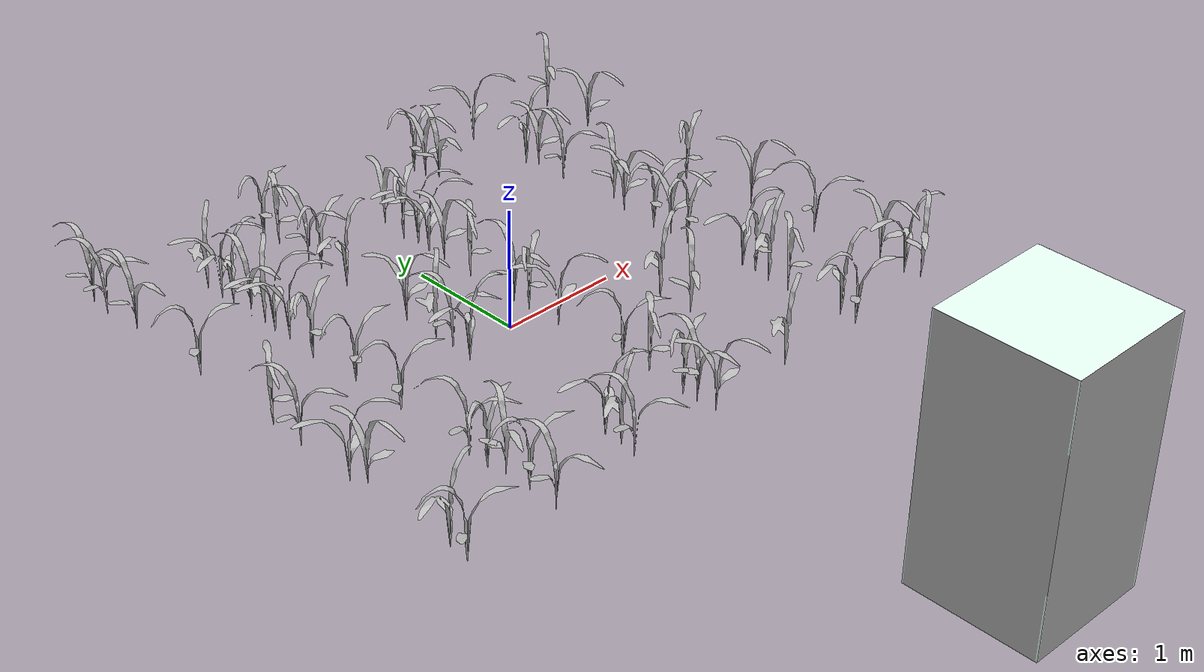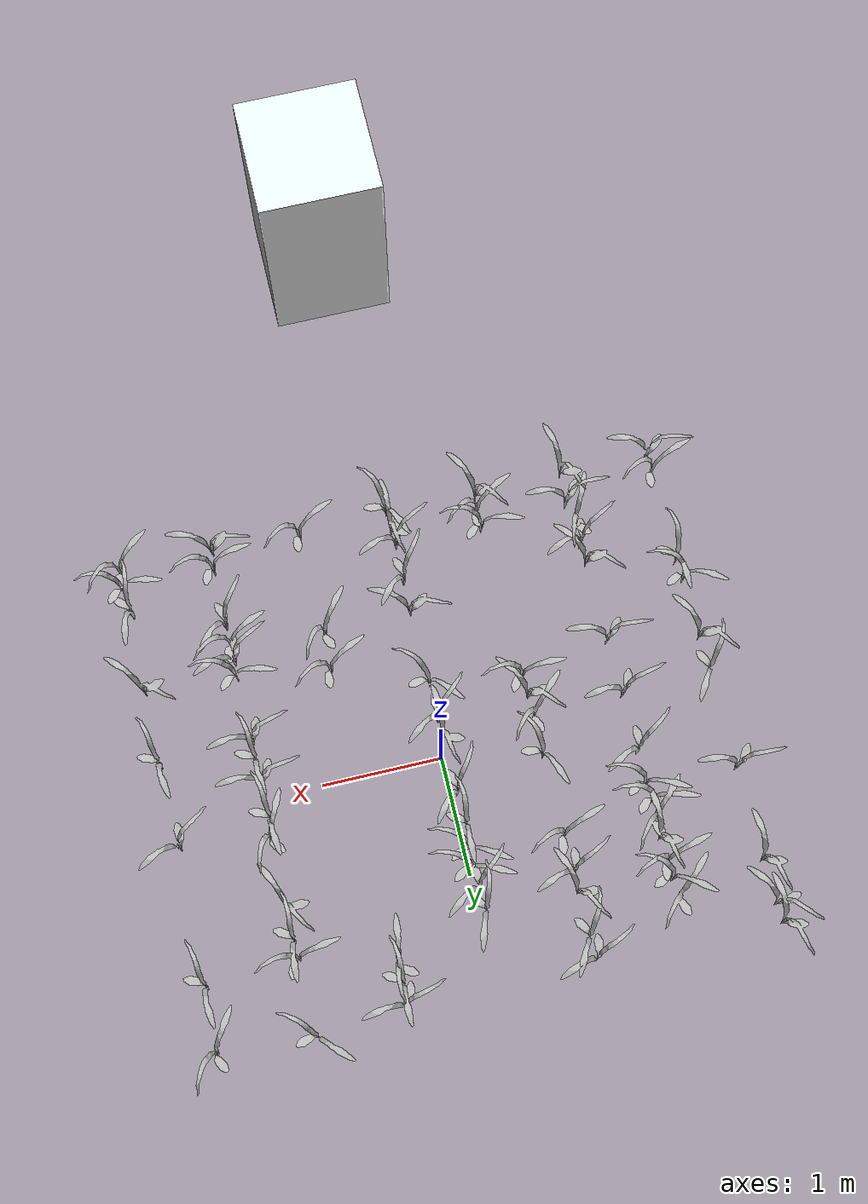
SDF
<sdf version="1.9">
 <world name="virtual_maize_field">
  <physics name="10ms" type="ignored">
   <max_step_size>0.01</max_step_size>
   <real_time_factor>1.0</real_time_factor>
  </physics>
  <plugin filename="gz-sim-physics-system" name="gz::sim::systems::Physics"/>
  <plugin filename="gz-sim-user-commands-system" name="gz::sim::systems::UserCommands"/>
  <plugin filename="gz-sim-scene-broadcaster-system" name="gz::sim::systems::SceneBroadcaster"/>
  <plugin filename="gz-sim-sensors-system" name="gz::sim::systems::Sensors">
   <render_engine>ogre2</render_engine>
  </plugin>
  <plugin filename="gz-sim-imu-system" name="gz::sim::systems::Imu"/>
  <plugin filename="gz-sim-navsat-system" name="gz::sim::systems::NavSat"/>
  <spherical_coordinates>
   <surface_model>EARTH_WGS84</surface_model>
   <world_frame_orientation>ENU</world_frame_orientation>
   <latitude_deg>43.9</latitude_deg>
   <longitude_deg>3.2</longitude_deg>
   <elevation>0</elevation>
   <heading_deg>0</heading_deg>
  </spherical_coordinates>
  <light type="directional" name="sun">
   <pose>0 0 10 0 0 0</pose>
   <diffuse>0.8 0.8 0.8 1</diffuse>
   <specular>0.2 0.2 0.2 1</specular>
   <attenuation>
    <range>1000</range>
    <constant>0.9</constant>
    <linear>0.01</linear>
    <quadratic>0.001</quadratic>
   </attenuation>
   <direction>-0.5 0.1 -0.9</direction>
  </light>
  <scene><sky><clouds><speed>12</speed></clouds></sky><grid>false</grid></scene>
  <include>
   <uri>model://maize_02</uri>
   <pose>-2.280478764553107 -2.057721277300408 0.28627740872267265 0.0 0.0 1.8720120180171442</pose>
   <name>maize_02_0000</name>
   <static>false</static>
  </include>
  <include>
   <uri>model://maize_02</uri>
   <pose>-2.2733260338410277 -1.889202804057839 0.29349625050985456 0.0 0.0 5.63959209871181</pose>
   <name>maize_02_0001</name>
   <static>false</static>
  </include>
  <include>
   <uri>model://maize_02</uri>
   <pose>-2.2619232396700895 -1.0853739835721579 0.30226142411907087 0.0 0.0 3.7515833003964496</pose>
   <name>maize_02_0003</name>
   <static>false</static>
  </include>
  <include>
   <uri>model://maize_02</uri>
   <pose>-2.2867931846025513 -0.9285945823231978 0.2910943614136894 0.0 0.0 4.743273617379528</pose>
   <name>maize_02_0004</name>
   <static>false</static>
  </include>
  <include>
   <uri>model://maize_02</uri>
   <pose>-2.2793649961458917 -0.41335339665062437 0.29112966319470995 0.0 0.0 1.1494339442985053</pose>
   <name>maize_02_0007</name>
   <static>false</static>
  </include>
  <include>
   <uri>model://maize_02</uri>
   <pose>-2.267394452640868 -0.10118366165418897 0.28141365288514425 0.0 0.0 3.1896032610876057</pose>
   <name>maize_02_0009</name>
   <static>false</static>
  </include>
  <include>
   <uri>model://maize_02</uri>
   <pose>-2.2703259378626286 0.7120040851280762 0.29333628642432247 0.0 0.0 2.0322318432456394</pose>
   <name>maize_02_0014</name>
   <static>false</static>
  </include>
  <include>
   <uri>model://maize_02</uri>
   <pose>-2.268814722625795 1.4746359378456526 0.27619452105389064 0.0 0.0 0.7124209023032879</pose>
   <name>maize_02_0019</name>
   <static>false</static>
  </include>
  <include>
   <uri>model://maize_02</uri>
   <pose>-2.2781012746502034 1.8332050532693256 0.27343377258668156 0.0 0.0 1.2546337945646646</pose>
   <name>maize_02_0021</name>
   <static>false</static>
  </include>
  <include>
   <uri>model://maize_02</uri>
   <pose>-2.2841497705269997 1.989020841650235 0.28168002232124884 0.0 0.0 0.7268625106238895</pose>
   <name>maize_02_0022</name>
   <static>false</static>
  </include>
  <include>
   <uri>model://maize_02</uri>
   <pose>-1.5286354149893855 -2.0671385052837166 0.2961514907351318 0.0 0.0 0.8320594968699757</pose>
   <name>maize_02_0023</name>
   <static>false</static>
  </include>
  <include>
   <uri>model://maize_02</uri>
   <pose>-1.5067005864484766 -1.8012772397383014 0.2956138209541594 0.0 0.0 2.0748865432425876</pose>
   <name>maize_02_0025</name>
   <static>false</static>
  </include>
  <include>
   <uri>model://maize_02</uri>
   <pose>-1.5339377065978532 -1.6008881648975608 0.2826941863412517 0.0 0.0 0.18416009197814823</pose>
   <name>maize_02_0026</name>
   <static>false</static>
  </include>
  <include>
   <uri>model://maize_02</uri>
   <pose>-1.5336434804624843 -1.4277718007915514 0.2703062832458717 0.0 0.0 2.573280028896136</pose>
   <name>maize_02_0027</name>
   <static>false</static>
  </include>
  <include>
   <uri>model://maize_02</uri>
   <pose>-1.5397105588408657 -1.2566466978034159 0.27336239124376166 0.0 0.0 1.2869296378073796</pose>
   <name>maize_02_0028</name>
   <static>false</static>
  </include>
  <include>
   <uri>model://maize_02</uri>
   <pose>-1.5350899835801932 -0.5626309827653171 0.2839857180806742 0.0 0.0 1.9847134763411012</pose>
   <name>maize_02_0030</name>
   <static>false</static>
  </include>
  <include>
   <uri>model://maize_02</uri>
   <pose>-1.5382933133703598 -0.08894847618422914 0.2854878301625226 0.0 0.0 2.2920333352055597</pose>
   <name>maize_02_0033</name>
   <static>false</static>
  </include>
  <include>
   <uri>model://maize_02</uri>
   <pose>-1.5328087581296994 0.3957369155054827 0.2560577403246313 0.0 0.0 2.698016188059432</pose>
   <name>maize_02_0036</name>
   <static>false</static>
  </include>
  <include>
   <uri>model://maize_02</uri>
   <pose>-1.5171461868458984 0.6768714418897364 0.2620117879287289 0.0 0.0 4.8270179205906265</pose>
   <name>maize_02_0038</name>
   <static>false</static>
  </include>
  <include>
   <uri>model://maize_02</uri>
   <pose>-1.5417899665669725 0.814537282126748 0.2666770319865936 0.0 0.0 5.007855438043132</pose>
   <name>maize_02_0039</name>
   <static>false</static>
  </include>
  <include>
   <uri>model://maize_02</uri>
   <pose>-1.5110398144468606 0.9718416543588348 0.2507162212025502 0.0 0.0 6.113410660337649</pose>
   <name>maize_02_0040</name>
   <static>false</static>
  </include>
  <include>
   <uri>model://maize_02</uri>
   <pose>-1.5242676854284192 1.1152865554115274 0.25354410919065107 0.0 0.0 0.6832553373274017</pose>
   <name>maize_02_0041</name>
   <static>false</static>
  </include>
  <include>
   <uri>model://maize_02</uri>
   <pose>-1.529188068311415 1.3198203607712269 0.26862109037180276 0.0 0.0 5.57262517404849</pose>
   <name>maize_02_0042</name>
   <static>false</static>
  </include>
  <include>
   <uri>model://maize_02</uri>
   <pose>-1.5291201761355624 1.4604290914006632 0.26536458214025077 0.0 0.0 4.642882497065351</pose>
   <name>maize_02_0043</name>
   <static>false</static>
  </include>
  <include>
   <uri>model://maize_02</uri>
   <pose>-1.5430365260068861 1.612840346753323 0.26536458214025077 0.0 0.0 6.085799571148444</pose>
   <name>maize_02_0044</name>
   <static>false</static>
  </include>
  <include>
   <uri>model://maize_02</uri>
   <pose>-0.7817051901855216 -2.0328149259961523 0.31030970099192084 0.0 0.0 1.1241461711036878</pose>
   <name>maize_02_0047</name>
   <static>false</static>
  </include>
  <include>
   <uri>model://maize_02</uri>
   <pose>-0.7575207239278272 -1.887266459088802 0.30770471518965653 0.0 0.0 5.779769099213055</pose>
   <name>maize_02_0048</name>
   <static>false</static>
  </include>
  <include>
   <uri>model://maize_02</uri>
   <pose>-0.7577755041395364 -1.7390294059736986 0.30770471518965653 0.0 0.0 5.029437009665924</pose>
   <name>maize_02_0049</name>
   <static>false</static>
  </include>
  <include>
   <uri>model://maize_02</uri>
   <pose>-0.7768864872436745 -0.41658178210502944 0.2786956433380686 0.0 0.0 5.283537190459066</pose>
   <name>maize_02_0054</name>
   <static>false</static>
  </include>
  <include>
   <uri>model://maize_02</uri>
   <pose>-0.7854134650305098 -0.2499917242332798 0.2863620462667836 0.0 0.0 1.231788702483761</pose>
   <name>maize_02_0055</name>
   <static>false</static>
  </include>
  <include>
   <uri>model://maize_02</uri>
   <pose>-0.7918883890576693 -0.0741253666109822 0.2860110707337415 0.0 0.0 6.077294900270958</pose>
   <name>maize_02_0056</name>
   <static>false</static>
  </include>
  <include>
   <uri>model://maize_02</uri>
   <pose>-0.7767826078978814 0.26217442401325003 0.2729596430672712 0.0 0.0 4.094909578516444</pose>
   <name>maize_02_0058</name>
   <static>false</static>
  </include>
  <include>
   <uri>model://maize_02</uri>
   <pose>-0.7823073864498058 0.9324001351862787 0.2803677040921131 0.0 0.0 5.6410248753988155</pose>
   <name>maize_02_0062</name>
   <static>false</static>
  </include>
  <include>
   <uri>model://maize_02</uri>
   <pose>-0.7752573416467206 1.2346492001479217 0.2749463412645203 0.0 0.0 2.5422367998107602</pose>
   <name>maize_02_0064</name>
   <static>false</static>
  </include>
  <include>
   <uri>model://maize_02</uri>
   <pose>-0.775198854805925 1.3869016546808568 0.26351107973889415 0.0 0.0 0.9799254664820166</pose>
   <name>maize_02_0065</name>
   <static>false</static>
  </include>
  <include>
   <uri>model://maize_02</uri>
   <pose>-0.7657755336329704 1.7577776070323214 0.248715823978967 0.0 0.0 3.249485313772079</pose>
   <name>maize_02_0067</name>
   <static>false</static>
  </include>
  <include>
   <uri>model://maize_02</uri>
   <pose>-0.7816776214534051 1.9267669328803894 0.24566196096696885 0.0 0.0 2.5245818299771403</pose>
   <name>maize_02_0068</name>
   <static>false</static>
  </include>
  <include>
   <uri>model://maize_02</uri>
   <pose>-0.012623106798989883 -2.0523608632169044 0.3133858134679932 0.0 0.0 4.143608748758966</pose>
   <name>maize_02_0069</name>
   <static>false</static>
  </include>
  <include>
   <uri>model://maize_02</uri>
   <pose>-0.025497776882283232 -1.891169705161148 0.30142042217683973 0.0 0.0 0.639833163429985</pose>
   <name>maize_02_0070</name>
   <static>false</static>
  </include>
  <include>
   <uri>model://maize_02</uri>
   <pose>-0.035903553135029756 -1.7715219985019677 0.2986754284725383 0.0 0.0 2.5567585751894355</pose>
   <name>maize_02_0071</name>
   <static>false</static>
  </include>
  <include>
   <uri>model://maize_02</uri>
   <pose>-0.02372028939165656 -1.43994624638807 0.29746882598129015 0.0 0.0 3.0257246690822797</pose>
   <name>maize_02_0073</name>
   <static>false</static>
  </include>
  <include>
   <uri>model://maize_02</uri>
   <pose>-0.018484125703275914 -1.1735313269096228 0.2773457782854254 0.0 0.0 1.6852105302199818</pose>
   <name>maize_02_0075</name>
   <static>false</static>
  </include>
  <include>
   <uri>model://maize_02</uri>
   <pose>-0.029695686163140958 -0.539713163271828 0.2757065121227481 0.0 0.0 4.447731266840688</pose>
   <name>maize_02_0079</name>
   <static>false</static>
  </include>
  <include>
   <uri>model://maize_02</uri>
   <pose>-0.027342746085042793 -0.23147630886088105 0.27266896482548725 0.0 0.0 2.8277675913144096</pose>
   <name>maize_02_0081</name>
   <static>false</static>
  </include>
  <include>
   <uri>model://maize_02</uri>
   <pose>-0.042180869302177196 -0.087566116344109 0.2709381100503994 0.0 0.0 0.6605415640612664</pose>
   <name>maize_02_0082</name>
   <static>false</static>
  </include>
  <include>
   <uri>model://maize_02</uri>
   <pose>-0.037904733950364825 0.3903296812981221 0.2711201257907982 0.0 0.0 3.0745880617054953</pose>
   <name>maize_02_0085</name>
   <static>false</static>
  </include>
  <include>
   <uri>model://maize_02</uri>
   <pose>-0.04412830767450222 0.6775012571517862 0.27309012982061204 0.0 0.0 3.7012600708133223</pose>
   <name>maize_02_0087</name>
   <static>false</static>
  </include>
  <include>
   <uri>model://maize_02</uri>
   <pose>-0.029748516736134614 0.8705718398112896 0.2703018797877547 0.0 0.0 4.7235088642501095</pose>
   <name>maize_02_0088</name>
   <static>false</static>
  </include>
  <include>
   <uri>model://maize_02</uri>
   <pose>-0.0076149162306997226 1.0186627904998298 0.2652978436262628 0.0 0.0 4.848014839454672</pose>
   <name>maize_02_0089</name>
   <static>false</static>
  </include>
  <include>
   <uri>model://maize_02</uri>
   <pose>-0.016397687150115206 1.1786553341423531 0.26225636241332595 0.0 0.0 2.823594025869263</pose>
   <name>maize_02_0090</name>
   <static>false</static>
  </include>
  <include>
   <uri>model://maize_02</uri>
   <pose>-0.031248315710804955 1.3739684441243332 0.26264293427863594 0.0 0.0 3.4397746441371306</pose>
   <name>maize_02_0091</name>
   <static>false</static>
  </include>
  <include>
   <uri>model://maize_02</uri>
   <pose>0.7330443532824586 -2.0169317931094843 0.3048354902831478 0.0 0.0 5.745012319271584</pose>
   <name>maize_02_0094</name>
   <static>false</static>
  </include>
  <include>
   <uri>model://maize_02</uri>
   <pose>0.7078011130236355 -1.136759334193285 0.2990281774017036 0.0 0.0 6.215871514407281</pose>
   <name>maize_02_0095</name>
   <static>false</static>
  </include>
  <include>
   <uri>model://maize_02</uri>
   <pose>0.7293936028280223 -0.8184948053018155 0.3023409702084387 0.0 0.0 5.747746498627837</pose>
   <name>maize_02_0097</name>
   <static>false</static>
  </include>
  <include>
   <uri>model://maize_02</uri>
   <pose>0.7236318760372444 1.6121855766526554 0.2581625979677966 0.0 0.0 0.4577699006842754</pose>
   <name>maize_02_0103</name>
   <static>false</static>
  </include>
  <include>
   <uri>model://maize_02</uri>
   <pose>0.726154717686349 1.7732769402838457 0.24795208684607412 0.0 0.0 3.7341533889674428</pose>
   <name>maize_02_0104</name>
   <static>false</static>
  </include>
  <include>
   <uri>model://maize_02</uri>
   <pose>0.7429639977898692 1.9310807986946925 0.24403557687155866 0.0 0.0 2.343841111914735</pose>
   <name>maize_02_0105</name>
   <static>false</static>
  </include>
  <include>
   <uri>model://maize_02</uri>
   <pose>1.466310741118168 -2.0447920427068564 0.34074793680812365 0.0 0.0 1.8394985577014276</pose>
   <name>maize_02_0106</name>
   <static>false</static>
  </include>
  <include>
   <uri>model://maize_02</uri>
   <pose>1.4873035778589638 -1.886924852109717 0.32950474805229996 0.0 0.0 5.454947564650885</pose>
   <name>maize_02_0107</name>
   <static>false</static>
  </include>
  <include>
   <uri>model://maize_02</uri>
   <pose>1.4851134008007312 -1.3928115103210834 0.3079879311192529 0.0 0.0 3.0283335735064507</pose>
   <name>maize_02_0110</name>
   <static>false</static>
  </include>
  <include>
   <uri>model://maize_02</uri>
   <pose>1.4718502136994116 -1.2128384641516152 0.31425477425873904 0.0 0.0 5.7267597713433345</pose>
   <name>maize_02_0111</name>
   <static>false</static>
  </include>
  <include>
   <uri>model://maize_02</uri>
   <pose>1.478600219955674 -1.0787080357188175 0.31425477425873904 0.0 0.0 2.5589493242668446</pose>
   <name>maize_02_0112</name>
   <static>false</static>
  </include>
  <include>
   <uri>model://maize_02</uri>
   <pose>1.4852566527859692 -0.944289460517379 0.3088432711248338 0.0 0.0 5.040810731273213</pose>
   <name>maize_02_0113</name>
   <static>false</static>
  </include>
  <include>
   <uri>model://maize_02</uri>
   <pose>1.4740614278502966 -0.3953047534042144 0.28553783273512295 0.0 0.0 2.3384929028737576</pose>
   <name>maize_02_0116</name>
   <static>false</static>
  </include>
  <include>
   <uri>model://maize_02</uri>
   <pose>1.47428114146283 -0.21956637576846333 0.2786039086349345 0.0 0.0 3.83544511150956</pose>
   <name>maize_02_0117</name>
   <static>false</static>
  </include>
  <include>
   <uri>model://maize_02</uri>
   <pose>1.4645172785185367 -0.049408095937768695 0.2781352251771823 0.0 0.0 2.2270544882616865</pose>
   <name>maize_02_0118</name>
   <static>false</static>
  </include>
  <include>
   <uri>model://maize_02</uri>
   <pose>1.4599330411640488 0.26669350990159374 0.2650552820813464 0.0 0.0 3.840100417237829</pose>
   <name>maize_02_0120</name>
   <static>false</static>
  </include>
  <include>
   <uri>model://maize_02</uri>
   <pose>1.4875869712956764 0.4124876196438548 0.2650552820813464 0.0 0.0 0.1569606092228144</pose>
   <name>maize_02_0121</name>
   <static>false</static>
  </include>
  <include>
   <uri>model://maize_02</uri>
   <pose>1.4749053392307594 0.9618474195357856 0.2517673357310972 0.0 0.0 1.04293635995438</pose>
   <name>maize_02_0124</name>
   <static>false</static>
  </include>
  <include>
   <uri>model://maize_02</uri>
   <pose>1.4820486667066433 1.2502157631342794 0.2543755586584445 0.0 0.0 3.677195060604773</pose>
   <name>maize_02_0126</name>
   <static>false</static>
  </include>
  <include>
   <uri>model://maize_02</uri>
   <pose>1.4716951167345085 1.3898954127417584 0.2543755586584445 0.0 0.0 5.454898971379075</pose>
   <name>maize_02_0127</name>
   <static>false</static>
  </include>
  <include>
   <uri>model://maize_02</uri>
   <pose>1.4564951024055428 2.012060380283717 0.2172598174322555 0.0 0.0 4.524284551876832</pose>
   <name>maize_02_0131</name>
   <static>false</static>
  </include>
  <include>
   <uri>model://maize_02</uri>
   <pose>2.233264079078054 -2.020113318545062 0.36588371239326334 0.0 0.0 5.977102094487457</pose>
   <name>maize_02_0132</name>
   <static>false</static>
  </include>
  <include>
   <uri>model://maize_02</uri>
   <pose>2.236514634775952 -1.8678300162539656 0.3554650927638072 0.0 0.0 5.091277182818713</pose>
   <name>maize_02_0133</name>
   <static>false</static>
  </include>
  <include>
   <uri>model://maize_02</uri>
   <pose>2.2124342119860816 -1.657060130539757 0.3449530583598522 0.0 0.0 3.552612742266795</pose>
   <name>maize_02_0134</name>
   <static>false</static>
  </include>
  <include>
   <uri>model://maize_02</uri>
   <pose>2.237383643271413 -0.9998437598259562 0.31468993020800795 0.0 0.0 1.3552988937872712</pose>
   <name>maize_02_0138</name>
   <static>false</static>
  </include>
  <include>
   <uri>model://maize_02</uri>
   <pose>2.2298969815256267 -0.3654442276631373 0.30967009839189763 0.0 0.0 3.8959637144266295</pose>
   <name>maize_02_0141</name>
   <static>false</static>
  </include>
  <include>
   <uri>model://maize_02</uri>
   <pose>2.2125796526693358 0.30736990770397227 0.2403168707349771 0.0 0.0 2.6625423752608848</pose>
   <name>maize_02_0145</name>
   <static>false</static>
  </include>
  <include>
   <uri>model://maize_02</uri>
   <pose>2.2201988823568057 1.4363885744631915 0.237506483860498 0.0 0.0 3.829887103964325</pose>
   <name>maize_02_0152</name>
   <static>false</static>
  </include>
  <include>
   <uri>model://maize_02</uri>
   <pose>2.2383658968933946 1.9432145872905162 0.24671248465243334 0.0 0.0 0.014836143639150808</pose>
   <name>maize_02_0155</name>
   <static>false</static>
  </include>
  <include>
   <uri>model://location_marker_a</uri>
   <pose>-0.002778368452777971 -4.538830527182951 0.29933237131449747 0.0 0.0 0.0</pose>
   <name>location_marker_a_0010</name>
   <static>true</static>
  </include>
 </world>
</sdf>

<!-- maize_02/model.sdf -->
<sdf version="1.6">
  <model name='maize_02'>
    <pose frame=''>0 0 0.05 0 -0 0</pose>
    <link name='maize_02_link'>
      <inertial>
        <pose>0 0 0.01 0 0 0</pose>
        <mass>0.3</mass>
        <inertia>
          <ixx>0.0033416667</ixx>
          <ixy>0</ixy>
          <ixz>0</ixz>
          <iyy>0.0033416667</iyy>
          <iyz>0</iyz>
          <izz>0.000016666667</izz>
        </inertia>
        <pose>0 0 0.1 0 0 0</pose>
      </inertial>
      <collision name='collision'>
        <pose>0 0 0.2 0 -0 0</pose>
        <geometry>
          <box>
            <size>0.02 0.02 0.4</size>
          </box>
        </geometry>
        <max_contacts>10</max_contacts>
        <surface>
          <contact>
            <ode/>
          </contact>
          <bounce/>
          <friction>
            <ode>
              <mu>10</mu>
              <mu2>10</mu2>
            </ode>
          </friction>
        </surface>
      </collision>
      <visual name='visual'>
        <geometry>
          <mesh>
            <uri>model://maize_02/meshes/maize_02.dae</uri>
            <scale>0.683166466464586 0.683166466464586 0.683166466464586</scale>
          </mesh>
        </geometry>
      </visual>
      <self_collide>0</self_collide>
      <enable_wind>0</enable_wind>
      <kinematic>0</kinematic>
    </link>
  </model>
</sdf>

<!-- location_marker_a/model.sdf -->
<sdf version="1.7">
  <model name="location_marker_a">
    <static>true</static>
    <link name="link">
      <pose>0 0 1 0 0 0</pose>
      <collision name="collision">
        <geometry>
          <box>
            <size>1 1 2</size>
          </box>
        </geometry>
      </collision>
      <visual name="visual">
        <geometry>
          <mesh>
            <uri>model://location_marker_a/meshes/location_marker_a.dae</uri>
            <scale>0.5 0.5 0.5</scale>
          </mesh>
        </geometry>
      </visual>
    </link>
  </model>
</sdf>
